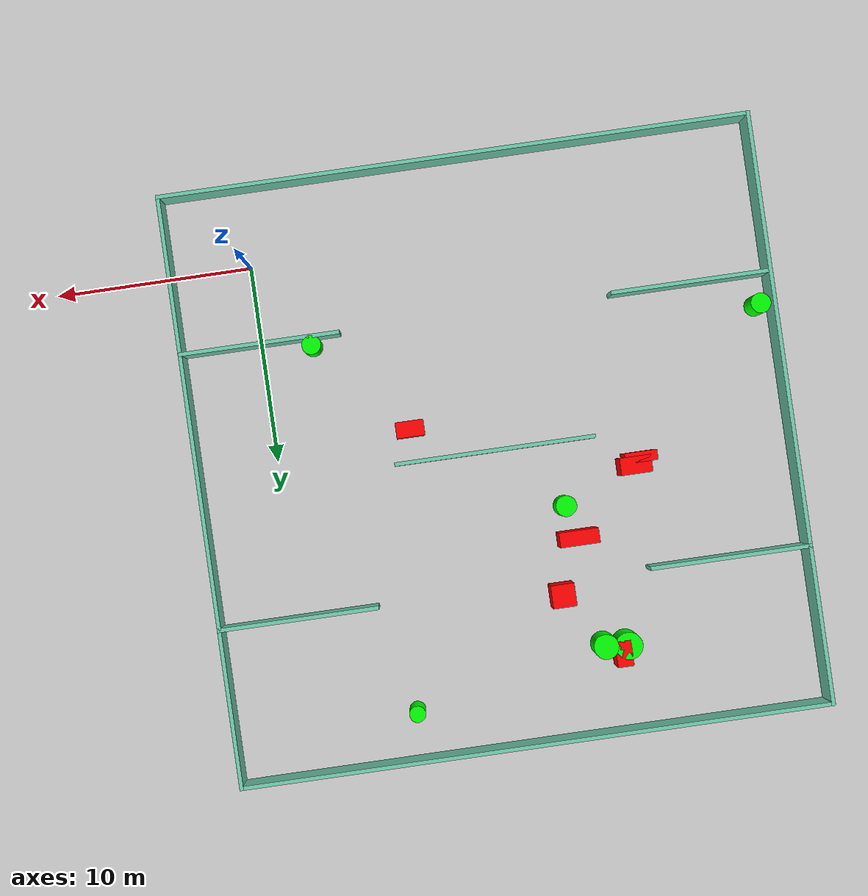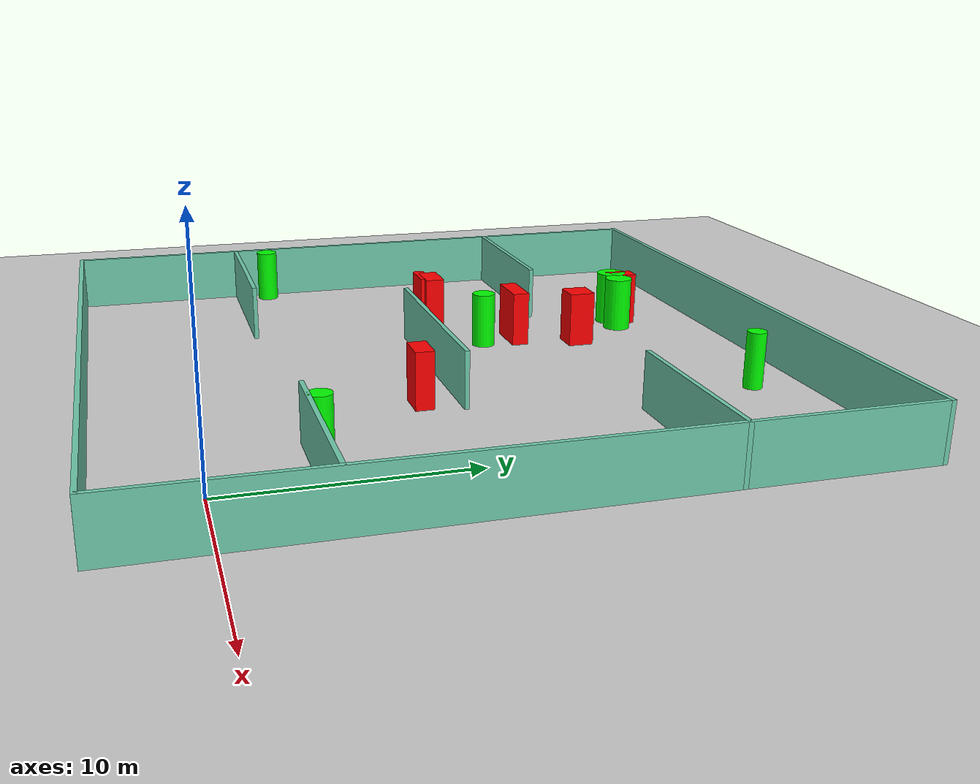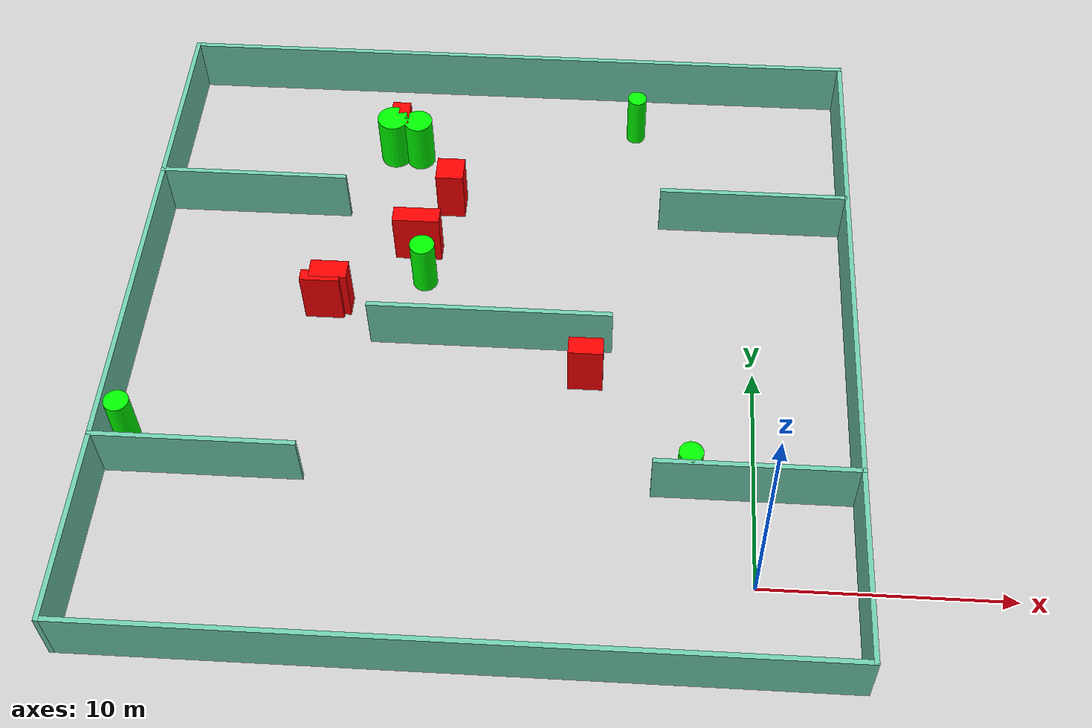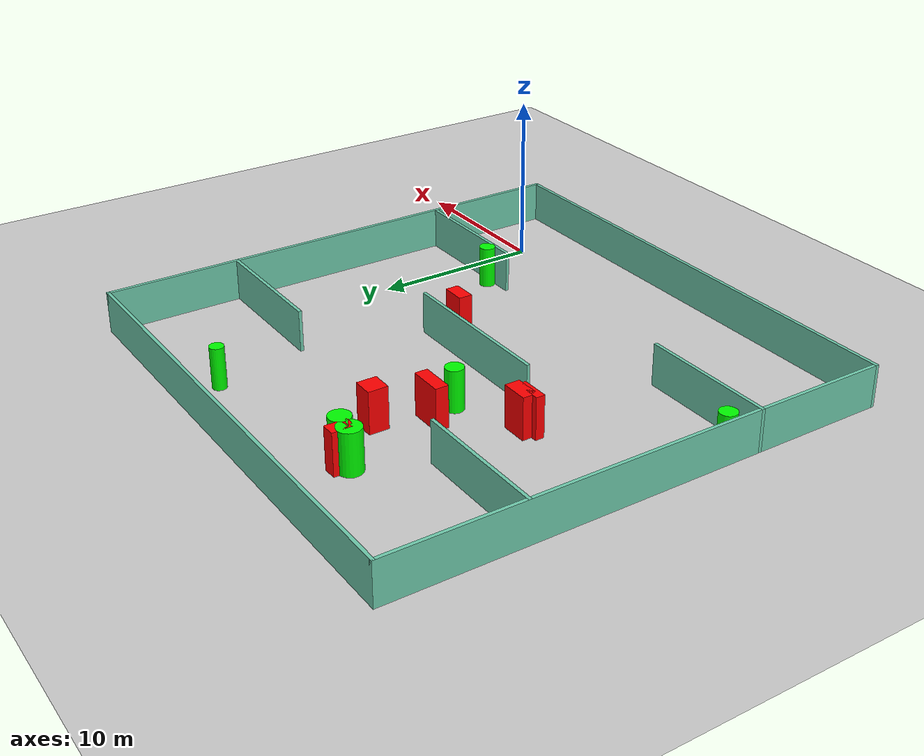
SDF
<sdf version="1.7">
 <world name="default">
  <light name="sun" type="directional">
   <pose>0 0 10 0 -0 0</pose>
   <diffuse>0.8 0.8 0.8 1</diffuse>
   <specular>0.2 0.2 0.2 1</specular>
   <attenuation>
    <range>1000</range>
    <constant>0.9</constant>
    <linear>0.01</linear>
    <quadratic>0.001</quadratic>
   </attenuation>
   <direction>-0.5 0.1 -0.9</direction>
   <spot><inner_angle>0</inner_angle><outer_angle>0</outer_angle><falloff>0</falloff></spot>
  </light>
  <model name="ground_plane">
   <static>1</static>
   <link name="link">
    <collision name="collision">
     <geometry><plane><normal>0 0 1</normal><size>100 100</size></plane></geometry>
     <surface>
      <contact><collide_bitmask>65535</collide_bitmask></contact>
      <friction><ode><mu>100</mu><mu2>50</mu2></ode></friction>
     </surface>
    </collision>
    <visual name="visual">
     <cast_shadows>0</cast_shadows>
     <geometry><plane><normal>0 0 1</normal><size>100 100</size></plane></geometry>
     <material>
      <script><uri>file://media/materials/scripts/gazebo.material</uri><name>Gazebo/Grey</name></script>
     </material>
    </visual>
   </link>
  </model>
  <gravity>0 0 -9.8</gravity>
  <magnetic_field>6e-06 2.3e-05 -4.2e-05</magnetic_field>
  <atmosphere type="adiabatic"/>
  <physics type="ode">
   <max_step_size>0.001</max_step_size>
   <real_time_factor>1</real_time_factor>
   <real_time_update_rate>1000</real_time_update_rate>
  </physics>
  <scene><ambient>0.4 0.4 0.4 1</ambient><background>0.7 0.7 0.7 1</background><shadows>1</shadows></scene>
  <spherical_coordinates>
   <surface_model>EARTH_WGS84</surface_model>
   <latitude_deg>0</latitude_deg>
   <longitude_deg>0</longitude_deg>
   <elevation>0</elevation>
   <heading_deg>0</heading_deg>
  </spherical_coordinates>
  <model name="my_base_walls">
   <link name="Wall_10">
    <collision name="Wall_10_Collision">
     <geometry><box><size>8.2 0.2 2.5</size></box></geometry>
     <pose>0 0 1.25 0 -0 0</pose>
    </collision>
    <visual name="Wall_10_Visual">
     <pose>0 0 1.25 0 -0 0</pose>
     <geometry><box><size>8.2 0.2 2.5</size></box></geometry>
     <material>
      <script><uri>file://media/materials/scripts/gazebo.material</uri><name>Gazebo/Grey</name></script>
      <ambient>0.435294 0.796078 0.67451 1</ambient>
     </material>
     <meta><layer>0</layer></meta>
    </visual>
    <pose>-11 -7 0 0 -0 0</pose>
   </link>
   <link name="Wall_12">
    <collision name="Wall_12_Collision">
     <geometry><box><size>8.2 0.2 2.5</size></box></geometry>
     <pose>0 0 1.25 0 -0 0</pose>
    </collision>
    <visual name="Wall_12_Visual">
     <pose>0 0 1.25 0 -0 0</pose>
     <geometry><box><size>8.2 0.2 2.5</size></box></geometry>
     <material>
      <script><uri>file://media/materials/scripts/gazebo.material</uri><name>Gazebo/Grey</name></script>
      <ambient>0.435294 0.796078 0.67451 1</ambient>
     </material>
     <meta><layer>0</layer></meta>
    </visual>
    <pose>-11 7 0 0 -0 0</pose>
   </link>
   <link name="Wall_14">
    <collision name="Wall_14_Collision">
     <geometry><box><size>8.2 0.2 2.5</size></box></geometry>
     <pose>0 0 1.25 0 -0 0</pose>
    </collision>
    <visual name="Wall_14_Visual">
     <pose>0 0 1.25 0 -0 0</pose>
     <geometry><box><size>8.2 0.2 2.5</size></box></geometry>
     <material>
      <script><uri>file://media/materials/scripts/gazebo.material</uri><name>Gazebo/Grey</name></script>
      <ambient>0.435294 0.796078 0.67451 1</ambient>
     </material>
     <meta><layer>0</layer></meta>
    </visual>
    <pose>11 7 0 0 -0 3.14159</pose>
   </link>
   <link name="Wall_16">
    <collision name="Wall_16_Collision">
     <geometry><box><size>10.2 0.2 2.5</size></box></geometry>
     <pose>0 0 1.25 0 -0 0</pose>
    </collision>
    <visual name="Wall_16_Visual">
     <pose>0 0 1.25 0 -0 0</pose>
     <geometry><box><size>10.2 0.2 2.5</size></box></geometry>
     <material>
      <script><uri>file://media/materials/scripts/gazebo.material</uri><name>Gazebo/Grey</name></script>
      <ambient>0.435294 0.796078 0.67451 1</ambient>
     </material>
     <meta><layer>0</layer></meta>
    </visual>
    <pose>0 0 0 0 -0 3.14159</pose>
   </link>
   <link name="Wall_2">
    <collision name="Wall_2_Collision">
     <geometry><box><size>30.2 0.2 2.5</size></box></geometry>
     <pose>0 0 1.25 0 -0 0</pose>
    </collision>
    <visual name="Wall_2_Visual">
     <pose>0 0 1.25 0 -0 0</pose>
     <geometry><box><size>30.2 0.2 2.5</size></box></geometry>
     <material>
      <script><uri>file://media/materials/scripts/gazebo.material</uri><name>Gazebo/Grey</name></script>
      <ambient>0.435294 0.796078 0.67451 1</ambient>
     </material>
     <meta><layer>0</layer></meta>
    </visual>
    <pose>0 -15 0 0 -0 3.14159</pose>
   </link>
   <link name="Wall_3">
    <collision name="Wall_3_Collision">
     <geometry><box><size>30.2 0.2 2.5</size></box></geometry>
     <pose>0 0 1.25 0 -0 0</pose>
    </collision>
    <visual name="Wall_3_Visual">
     <pose>0 0 1.25 0 -0 0</pose>
     <geometry><box><size>30.2 0.2 2.5</size></box></geometry>
     <material>
      <script><uri>file://media/materials/scripts/gazebo.material</uri><name>Gazebo/Grey</name></script>
      <ambient>0.435294 0.796078 0.67451 1</ambient>
     </material>
     <meta><layer>0</layer></meta>
    </visual>
    <pose>-15 0 0 0 -0 1.5708</pose>
   </link>
   <link name="Wall_4">
    <collision name="Wall_4_Collision">
     <geometry><box><size>30.2 0.2 2.5</size></box></geometry>
     <pose>0 0 1.25 0 -0 0</pose>
    </collision>
    <visual name="Wall_4_Visual">
     <pose>0 0 1.25 0 -0 0</pose>
     <geometry><box><size>30.2 0.2 2.5</size></box></geometry>
     <material>
      <script><uri>file://media/materials/scripts/gazebo.material</uri><name>Gazebo/Grey</name></script>
      <ambient>0.435294 0.796078 0.67451 1</ambient>
     </material>
     <meta><layer>0</layer></meta>
    </visual>
    <pose>0 15 0 0 -0 0</pose>
   </link>
   <link name="Wall_6">
    <collision name="Wall_6_Collision">
     <geometry><box><size>30.2 0.2 2.5</size></box></geometry>
     <pose>0 0 1.25 0 -0 0</pose>
    </collision>
    <visual name="Wall_6_Visual">
     <pose>0 0 1.25 0 -0 0</pose>
     <geometry><box><size>30.2 0.2 2.5</size></box></geometry>
     <material>
      <script><uri>file://media/materials/scripts/gazebo.material</uri><name>Gazebo/Grey</name></script>
      <ambient>0.435294 0.796078 0.67451 1</ambient>
     </material>
     <meta><layer>0</layer></meta>
    </visual>
    <pose>15 0 0 0 -0 1.5708</pose>
   </link>
   <link name="Wall_8">
    <collision name="Wall_8_Collision">
     <geometry><box><size>8.2 0.2 2.5</size></box></geometry>
     <pose>0 0 1.25 0 -0 0</pose>
    </collision>
    <visual name="Wall_8_Visual">
     <pose>0 0 1.25 0 -0 0</pose>
     <geometry><box><size>8.2 0.2 2.5</size></box></geometry>
     <material>
      <script><uri>file://media/materials/scripts/gazebo.material</uri><name>Gazebo/Grey</name></script>
      <ambient>0.435294 0.796078 0.67451 1</ambient>
     </material>
     <meta><layer>0</layer></meta>
    </visual>
    <pose>11 -7 0 0 -0 3.14159</pose>
   </link>
   <static>1</static>
   <pose>-11 11 0 0 -0 0</pose>
  </model>
  <model name="cylinder1">
   <static>1</static>
   <link name="link">
    <inertial>
     <mass>1</mass>
     <inertia><ixx>0.5</ixx><ixy>0</ixy><ixz>0</ixz><iyy>0.5</iyy><iyz>0</iyz><izz>1</izz></inertia>
    </inertial>
    <collision name="collision">
     <geometry><cylinder><radius>0.41474788819334546</radius><length>2.5</length></cylinder></geometry>
    </collision>
    <visual name="visual">
     <geometry><cylinder><radius>0.41474788819334546</radius><length>2.5</length></cylinder></geometry>
     <material>
      <ambient>0 1 0 1</ambient>
      <diffuse>0 1 0 1</diffuse>
      <specular>0.1 0.1 0.1 1</specular>
      <emissive>0 0 0 0</emissive>
     </material>
    </visual>
   </link>
   <pose>-5.281759568884651 23.569543162678713 1.25 0 0 0</pose>
  </model>
  <model name="cylinder2">
   <static>1</static>
   <link name="link">
    <inertial>
     <mass>1</mass>
     <inertia><ixx>0.5</ixx><ixy>0</ixy><ixz>0</ixz><iyy>0.5</iyy><iyz>0</iyz><izz>1</izz></inertia>
    </inertial>
    <collision name="collision">
     <geometry><cylinder><radius>0.6945355353859216</radius><length>2.5</length></cylinder></geometry>
    </collision>
    <visual name="visual">
     <geometry><cylinder><radius>0.6945355353859216</radius><length>2.5</length></cylinder></geometry>
     <material>
      <ambient>0 1 0 1</ambient>
      <diffuse>0 1 0 1</diffuse>
      <specular>0.1 0.1 0.1 1</specular>
      <emissive>0 0 0 0</emissive>
     </material>
    </visual>
   </link>
   <pose>-16.279217586678595 21.684576182631336 1.25 0 0 0</pose>
  </model>
  <model name="cylinder3">
   <static>1</static>
   <link name="link">
    <inertial>
     <mass>1</mass>
     <inertia><ixx>0.5</ixx><ixy>0</ixy><ixz>0</ixz><iyy>0.5</iyy><iyz>0</iyz><izz>1</izz></inertia>
    </inertial>
    <collision name="collision">
     <geometry><cylinder><radius>0.4867445704097111</radius><length>2.5</length></cylinder></geometry>
    </collision>
    <visual name="visual">
     <geometry><cylinder><radius>0.4867445704097111</radius><length>2.5</length></cylinder></geometry>
     <material>
      <ambient>0 1 0 1</ambient>
      <diffuse>0 1 0 1</diffuse>
      <specular>0.1 0.1 0.1 1</specular>
      <emissive>0 0 0 0</emissive>
     </material>
    </visual>
   </link>
   <pose>-2.6106235554143247 4.450443331283626 1.25 0 0 0</pose>
  </model>
  <model name="cylinder4">
   <static>1</static>
   <link name="link">
    <inertial>
     <mass>1</mass>
     <inertia><ixx>0.5</ixx><ixy>0</ixy><ixz>0</ixz><iyy>0.5</iyy><iyz>0</iyz><izz>1</izz></inertia>
    </inertial>
    <collision name="collision">
     <geometry><cylinder><radius>0.6326291185842505</radius><length>2.5</length></cylinder></geometry>
    </collision>
    <visual name="visual">
     <geometry><cylinder><radius>0.6326291185842505</radius><length>2.5</length></cylinder></geometry>
     <material>
      <ambient>0 1 0 1</ambient>
      <diffuse>0 1 0 1</diffuse>
      <specular>0.1 0.1 0.1 1</specular>
      <emissive>0 0 0 0</emissive>
     </material>
    </visual>
   </link>
   <pose>-15.136177400658834 21.571204868997384 1.25 0 0 0</pose>
  </model>
  <model name="cylinder5">
   <static>1</static>
   <link name="link">
    <inertial>
     <mass>1</mass>
     <inertia><ixx>0.5</ixx><ixy>0</ixy><ixz>0</ixz><iyy>0.5</iyy><iyz>0</iyz><izz>1</izz></inertia>
    </inertial>
    <collision name="collision">
     <geometry><cylinder><radius>0.5092265865101389</radius><length>2.5</length></cylinder></geometry>
    </collision>
    <visual name="visual">
     <geometry><cylinder><radius>0.5092265865101389</radius><length>2.5</length></cylinder></geometry>
     <material>
      <ambient>0 1 0 1</ambient>
      <diffuse>0 1 0 1</diffuse>
      <specular>0.1 0.1 0.1 1</specular>
      <emissive>0 0 0 0</emissive>
     </material>
    </visual>
   </link>
   <pose>-25.282989062813638 5.568129595438169 1.25 0 0 0</pose>
  </model>
  <model name="cylinder6">
   <static>1</static>
   <link name="link">
    <inertial>
     <mass>1</mass>
     <inertia><ixx>0.5</ixx><ixy>0</ixy><ixz>0</ixz><iyy>0.5</iyy><iyz>0</iyz><izz>1</izz></inertia>
    </inertial>
    <collision name="collision">
     <geometry><cylinder><radius>0.5307470282434962</radius><length>2.5</length></cylinder></geometry>
    </collision>
    <visual name="visual">
     <geometry><cylinder><radius>0.5307470282434962</radius><length>2.5</length></cylinder></geometry>
     <material>
      <ambient>0 1 0 1</ambient>
      <diffuse>0 1 0 1</diffuse>
      <specular>0.1 0.1 0.1 1</specular>
      <emissive>0 0 0 0</emissive>
     </material>
    </visual>
   </link>
   <pose>-14.14882749769479 14.293867213521743 1.25 0 0 0</pose>
  </model>
  <model name="box1">
   <static>1</static>
   <link name="link">
    <inertial>
     <mass>1</mass>
     <inertia><ixx>0.083</ixx><ixy>0</ixy><ixz>0</ixz><iyy>0.083</iyy><iyz>0</iyz><izz>0.083</izz></inertia>
    </inertial>
    <collision name="collision">
     <geometry><box><size>1.5951514856929687 0.8862648847491172 2.5</size></box></geometry>
    </collision>
    <visual name="visual">
     <geometry><box><size>1.5951514856929687 0.8862648847491172 2.5</size></box></geometry>
     <material>
      <ambient>1 0 0 1</ambient>
      <diffuse>1 0 0 1</diffuse>
      <specular>0.1 0.1 0.1 1</specular>
      <emissive>0 0 0 0</emissive>
     </material>
    </visual>
    <sensor name="my_contact" type="contact">
     <contact><collision>box_collision</collision><topic>__default_topic__</topic></contact>
    </sensor>
   </link>
   <pose>-17.91338479636259 12.739001367486644 1.25 0 0 0</pose>
  </model>
  <model name="box2">
   <static>1</static>
   <link name="link">
    <inertial>
     <mass>1</mass>
     <inertia><ixx>0.083</ixx><ixy>0</ixy><ixz>0</ixz><iyy>0.083</iyy><iyz>0</iyz><izz>0.083</izz></inertia>
    </inertial>
    <collision name="collision">
     <geometry><box><size>2.0216435017318157 0.7629198252578704 2.5</size></box></geometry>
    </collision>
    <visual name="visual">
     <geometry><box><size>2.0216435017318157 0.7629198252578704 2.5</size></box></geometry>
     <material>
      <ambient>1 0 0 1</ambient>
      <diffuse>1 0 0 1</diffuse>
      <specular>0.1 0.1 0.1 1</specular>
      <emissive>0 0 0 0</emissive>
     </material>
    </visual>
    <sensor name="my_contact" type="contact">
     <contact><collision>box_collision</collision><topic>__default_topic__</topic></contact>
    </sensor>
   </link>
   <pose>-14.578237574982273 15.962277490172035 1.25 0 0 0</pose>
  </model>
  <model name="box3">
   <static>1</static>
   <link name="link">
    <inertial>
     <mass>1</mass>
     <inertia><ixx>0.083</ixx><ixy>0</ixy><ixz>0</ixz><iyy>0.083</iyy><iyz>0</iyz><izz>0.083</izz></inertia>
    </inertial>
    <collision name="collision">
     <geometry><box><size>0.8144916427864063 1.3015117957740654 2.5</size></box></geometry>
    </collision>
    <visual name="visual">
     <geometry><box><size>0.8144916427864063 1.3015117957740654 2.5</size></box></geometry>
     <material>
      <ambient>1 0 0 1</ambient>
      <diffuse>1 0 0 1</diffuse>
      <specular>0.1 0.1 0.1 1</specular>
      <emissive>0 0 0 0</emissive>
     </material>
    </visual>
    <sensor name="my_contact" type="contact">
     <contact><collision>box_collision</collision><topic>__default_topic__</topic></contact>
    </sensor>
   </link>
   <pose>-15.978721157608295 22.04328075565416 1.25 0 0 0</pose>
  </model>
  <model name="box4">
   <static>1</static>
   <link name="link">
    <inertial>
     <mass>1</mass>
     <inertia><ixx>0.083</ixx><ixy>0</ixy><ixz>0</ixz><iyy>0.083</iyy><iyz>0</iyz><izz>0.083</izz></inertia>
    </inertial>
    <collision name="collision">
     <geometry><box><size>1.2029501117645922 1.1722642217327282 2.5</size></box></geometry>
    </collision>
    <visual name="visual">
     <geometry><box><size>1.2029501117645922 1.1722642217327282 2.5</size></box></geometry>
     <material>
      <ambient>1 0 0 1</ambient>
      <diffuse>1 0 0 1</diffuse>
      <specular>0.1 0.1 0.1 1</specular>
      <emissive>0 0 0 0</emissive>
     </material>
    </visual>
    <sensor name="my_contact" type="contact">
     <contact><collision>box_collision</collision><topic>__default_topic__</topic></contact>
    </sensor>
   </link>
   <pose>-13.381174135591863 18.738450034026414 1.25 0 0 0</pose>
  </model>
  <model name="box5">
   <static>1</static>
   <link name="link">
    <inertial>
     <mass>1</mass>
     <inertia><ixx>0.083</ixx><ixy>0</ixy><ixz>0</ixz><iyy>0.083</iyy><iyz>0</iyz><izz>0.083</izz></inertia>
    </inertial>
    <collision name="collision">
     <geometry><box><size>1.4357041146862808 0.8140968279339755 2.5</size></box></geometry>
    </collision>
    <visual name="visual">
     <geometry><box><size>1.4357041146862808 0.8140968279339755 2.5</size></box></geometry>
     <material>
      <ambient>1 0 0 1</ambient>
      <diffuse>1 0 0 1</diffuse>
      <specular>0.1 0.1 0.1 1</specular>
      <emissive>0 0 0 0</emissive>
     </material>
    </visual>
    <sensor name="my_contact" type="contact">
     <contact><collision>box_collision</collision><topic>__default_topic__</topic></contact>
    </sensor>
   </link>
   <pose>-6.924458905389468 9.333377408580848 1.25 0 0 0</pose>
  </model>
  <model name="box6">
   <static>1</static>
   <link name="link">
    <inertial>
     <mass>1</mass>
     <inertia><ixx>0.083</ixx><ixy>0</ixy><ixz>0</ixz><iyy>0.083</iyy><iyz>0</iyz><izz>0.083</izz></inertia>
    </inertial>
    <collision name="collision">
     <geometry><box><size>1.6524736088501422 0.5277426691208685 2.5</size></box></geometry>
    </collision>
    <visual name="visual">
     <geometry><box><size>1.6524736088501422 0.5277426691208685 2.5</size></box></geometry>
     <material>
      <ambient>1 0 0 1</ambient>
      <diffuse>1 0 0 1</diffuse>
      <specular>0.1 0.1 0.1 1</specular>
      <emissive>0 0 0 0</emissive>
     </material>
    </visual>
    <sensor name="my_contact" type="contact">
     <contact><collision>box_collision</collision><topic>__default_topic__</topic></contact>
    </sensor>
   </link>
   <pose>-18.227164609118176 12.360454148552115 1.25 0 0 0</pose>
  </model>
 </world>
</sdf>
